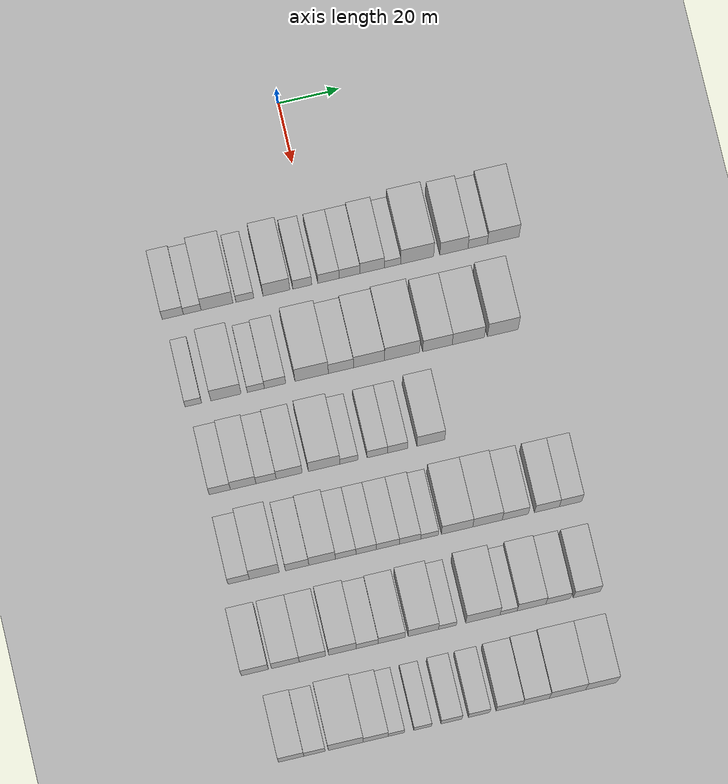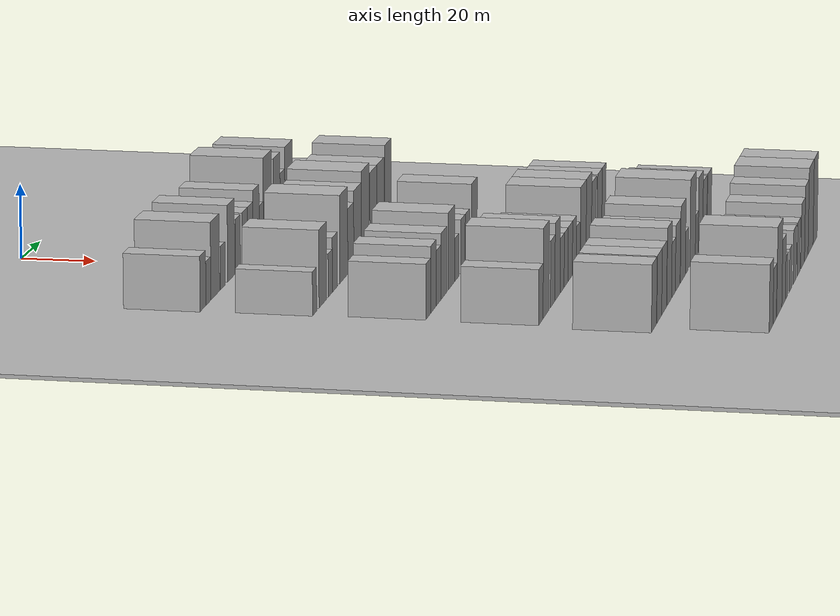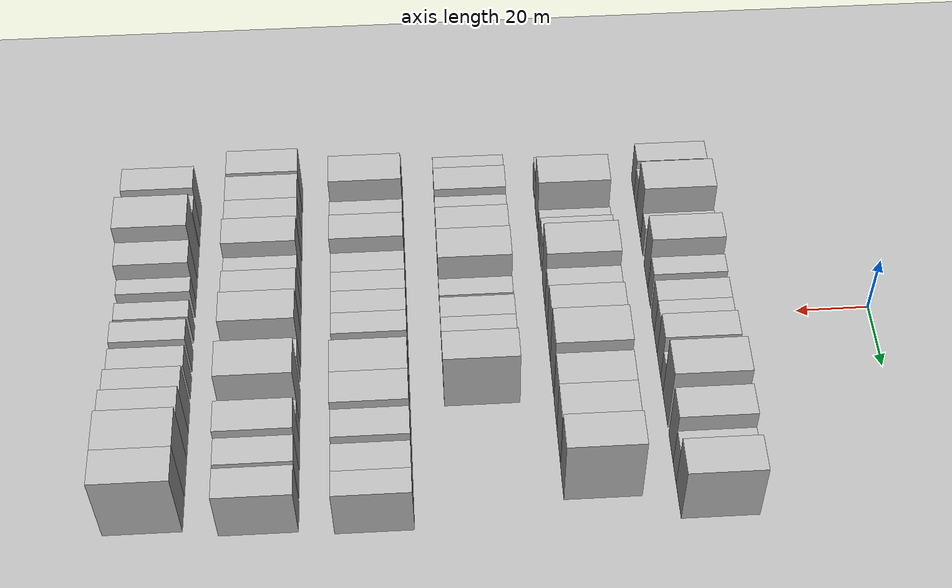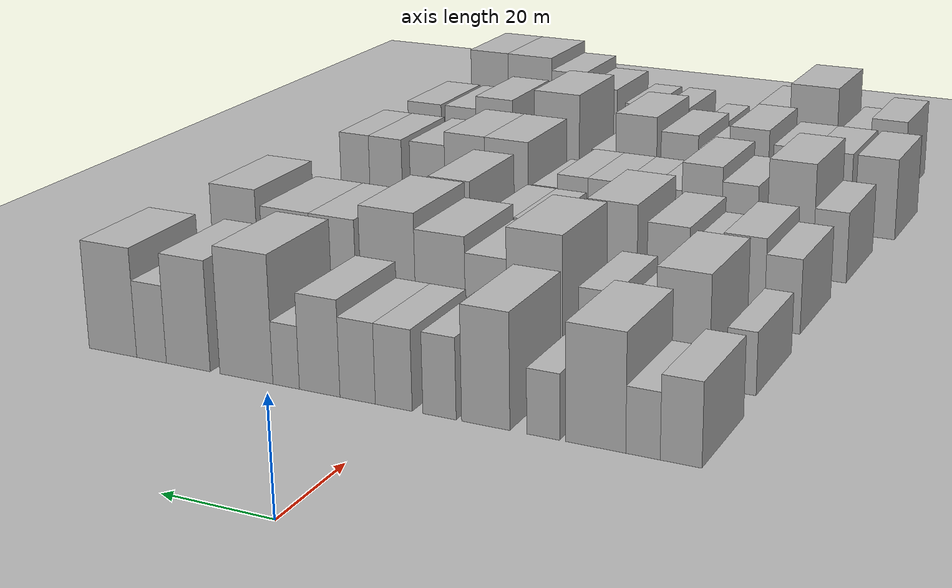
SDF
<sdf version="1.6">
 <world name="default">
  <include><name>ground_plane_1</name><uri>model://HANNAS_ground_plane</uri></include>
  <include>
   <name>ground_plane_2</name>
   <uri>model://HANNAS_ground_plane</uri>
   <pose>100 0 0  0 0 0</pose>
  </include>
  <model name="building_41">
   <static>1</static>
   <pose>50.0000 -48.1010 0 0.000000 0.000000 0.000000</pose>
   <link name="link">
    <pose>0 0 7.50 0 0 0</pose>
    <collision name="collision"><geometry><box><size>20.0000 6.8895 15.0000</size></box></geometry></collision>
    <visual name="visual">
     <cast_shadows>0</cast_shadows>
     <geometry><box><size>20.0000 6.8895 15.0000</size></box></geometry>
     <material>
      <script>
       <uri>model://HANNAS_wall/materials/scripts</uri>
       <uri>model://HANNAS_wall/materials/textures</uri>
       <name>vrc/HANNAS_wall</name>
      </script>
     </material>
    </visual>
   </link>
  </model>
  <model name="building_42">
   <static>1</static>
   <pose>50.0000 -41.7682 0 0.000000 0.000000 0.000000</pose>
   <link name="link">
    <pose>0 0 6.00 0 0 0</pose>
    <collision name="collision"><geometry><box><size>20.0000 5.7761 12.0000</size></box></geometry></collision>
    <visual name="visual">
     <cast_shadows>0</cast_shadows>
     <geometry><box><size>20.0000 5.7761 12.0000</size></box></geometry>
     <material>
      <script>
       <uri>model://HANNAS_wall/materials/scripts</uri>
       <uri>model://HANNAS_wall/materials/textures</uri>
       <name>vrc/HANNAS_wall</name>
      </script>
     </material>
    </visual>
   </link>
  </model>
  <model name="building_43">
   <static>1</static>
   <pose>50.0000 -33.7188 0 0.000000 0.000000 0.000000</pose>
   <link name="link">
    <pose>0 0 10.50 0 0 0</pose>
    <collision name="collision"><geometry><box><size>20.0000 10.3228 21.0000</size></box></geometry></collision>
    <visual name="visual">
     <cast_shadows>0</cast_shadows>
     <geometry><box><size>20.0000 10.3228 21.0000</size></box></geometry>
     <material>
      <script>
       <uri>model://HANNAS_wall/materials/scripts</uri>
       <uri>model://HANNAS_wall/materials/textures</uri>
       <name>vrc/HANNAS_wall</name>
      </script>
     </material>
    </visual>
   </link>
  </model>
  <model name="building_44">
   <static>1</static>
   <pose>50.0000 -24.6572 0 0.000000 0.000000 0.000000</pose>
   <link name="link">
    <pose>0 0 6.00 0 0 0</pose>
    <collision name="collision"><geometry><box><size>20.0000 5.8003 12.0000</size></box></geometry></collision>
    <visual name="visual">
     <cast_shadows>0</cast_shadows>
     <geometry><box><size>20.0000 5.8003 12.0000</size></box></geometry>
     <material>
      <script>
       <uri>model://HANNAS_wall/materials/scripts</uri>
       <uri>model://HANNAS_wall/materials/textures</uri>
       <name>vrc/HANNAS_wall</name>
      </script>
     </material>
    </visual>
   </link>
  </model>
  <model name="building_45">
   <static>1</static>
   <pose>50.0000 -14.4019 0 0.000000 0.000000 0.000000</pose>
   <link name="link">
    <pose>0 0 10.50 0 0 0</pose>
    <collision name="collision"><geometry><box><size>20.0000 8.7104 21.0000</size></box></geometry></collision>
    <visual name="visual">
     <cast_shadows>0</cast_shadows>
     <geometry><box><size>20.0000 8.7104 21.0000</size></box></geometry>
     <material>
      <script>
       <uri>model://HANNAS_wall/materials/scripts</uri>
       <uri>model://HANNAS_wall/materials/textures</uri>
       <name>vrc/HANNAS_wall</name>
      </script>
     </material>
    </visual>
   </link>
  </model>
  <model name="building_46">
   <static>1</static>
   <pose>50.0000 -5.9768 0 0.000000 0.000000 0.000000</pose>
   <link name="link">
    <pose>0 0 7.50 0 0 0</pose>
    <collision name="collision"><geometry><box><size>20.0000 6.1398 15.0000</size></box></geometry></collision>
    <visual name="visual">
     <cast_shadows>0</cast_shadows>
     <geometry><box><size>20.0000 6.1398 15.0000</size></box></geometry>
     <material>
      <script>
       <uri>model://HANNAS_wall/materials/scripts</uri>
       <uri>model://HANNAS_wall/materials/textures</uri>
       <name>vrc/HANNAS_wall</name>
      </script>
     </material>
    </visual>
   </link>
  </model>
  <model name="building_47">
   <static>1</static>
   <pose>50.0000 2.5735 0 0.000000 0.000000 0.000000</pose>
   <link name="link">
    <pose>0 0 7.50 0 0 0</pose>
    <collision name="collision"><geometry><box><size>20.0000 6.9609 15.0000</size></box></geometry></collision>
    <visual name="visual">
     <cast_shadows>0</cast_shadows>
     <geometry><box><size>20.0000 6.9609 15.0000</size></box></geometry>
     <material>
      <script>
       <uri>model://HANNAS_wall/materials/scripts</uri>
       <uri>model://HANNAS_wall/materials/textures</uri>
       <name>vrc/HANNAS_wall</name>
      </script>
     </material>
    </visual>
   </link>
  </model>
  <model name="building_48">
   <static>1</static>
   <pose>50.0000 9.4496 0 0.000000 0.000000 0.000000</pose>
   <link name="link">
    <pose>0 0 7.50 0 0 0</pose>
    <collision name="collision"><geometry><box><size>20.0000 6.7913 15.0000</size></box></geometry></collision>
    <visual name="visual">
     <cast_shadows>0</cast_shadows>
     <geometry><box><size>20.0000 6.7913 15.0000</size></box></geometry>
     <material>
      <script>
       <uri>model://HANNAS_wall/materials/scripts</uri>
       <uri>model://HANNAS_wall/materials/textures</uri>
       <name>vrc/HANNAS_wall</name>
      </script>
     </material>
    </visual>
   </link>
  </model>
  <model name="building_49">
   <static>1</static>
   <pose>50.0000 16.8193 0 0.000000 0.000000 0.000000</pose>
   <link name="link">
    <pose>0 0 9.00 0 0 0</pose>
    <collision name="collision"><geometry><box><size>20.0000 7.9480 18.0000</size></box></geometry></collision>
    <visual name="visual">
     <cast_shadows>0</cast_shadows>
     <geometry><box><size>20.0000 7.9480 18.0000</size></box></geometry>
     <material>
      <script>
       <uri>model://HANNAS_wall/materials/scripts</uri>
       <uri>model://HANNAS_wall/materials/textures</uri>
       <name>vrc/HANNAS_wall</name>
      </script>
     </material>
    </visual>
   </link>
  </model>
  <model name="building_50">
   <static>1</static>
   <pose>50.0000 23.4290 0 0.000000 0.000000 0.000000</pose>
   <link name="link">
    <pose>0 0 6.00 0 0 0</pose>
    <collision name="collision"><geometry><box><size>20.0000 5.2714 12.0000</size></box></geometry></collision>
    <visual name="visual">
     <cast_shadows>0</cast_shadows>
     <geometry><box><size>20.0000 5.2714 12.0000</size></box></geometry>
     <material>
      <script>
       <uri>model://HANNAS_wall/materials/scripts</uri>
       <uri>model://HANNAS_wall/materials/textures</uri>
       <name>vrc/HANNAS_wall</name>
      </script>
     </material>
    </visual>
   </link>
  </model>
  <model name="building_51">
   <static>1</static>
   <pose>50.0000 31.4627 0 0.000000 0.000000 0.000000</pose>
   <link name="link">
    <pose>0 0 12.00 0 0 0</pose>
    <collision name="collision"><geometry><box><size>20.0000 10.7959 24.0000</size></box></geometry></collision>
    <visual name="visual">
     <cast_shadows>0</cast_shadows>
     <geometry><box><size>20.0000 10.7959 24.0000</size></box></geometry>
     <material>
      <script>
       <uri>model://HANNAS_wall/materials/scripts</uri>
       <uri>model://HANNAS_wall/materials/textures</uri>
       <name>vrc/HANNAS_wall</name>
      </script>
     </material>
    </visual>
   </link>
  </model>
  <model name="building_52">
   <static>1</static>
   <pose>50.0000 43.4519 0 0.000000 0.000000 0.000000</pose>
   <link name="link">
    <pose>0 0 10.50 0 0 0</pose>
    <collision name="collision"><geometry><box><size>20.0000 9.1825 21.0000</size></box></geometry></collision>
    <visual name="visual">
     <cast_shadows>0</cast_shadows>
     <geometry><box><size>20.0000 9.1825 21.0000</size></box></geometry>
     <material>
      <script>
       <uri>model://HANNAS_wall/materials/scripts</uri>
       <uri>model://HANNAS_wall/materials/textures</uri>
       <name>vrc/HANNAS_wall</name>
      </script>
     </material>
    </visual>
   </link>
  </model>
  <model name="building_53">
   <static>1</static>
   <pose>50.0000 51.2084 0 0.000000 0.000000 0.000000</pose>
   <link name="link">
    <pose>0 0 7.50 0 0 0</pose>
    <collision name="collision"><geometry><box><size>20.0000 6.3305 15.0000</size></box></geometry></collision>
    <visual name="visual">
     <cast_shadows>0</cast_shadows>
     <geometry><box><size>20.0000 6.3305 15.0000</size></box></geometry>
     <material>
      <script>
       <uri>model://HANNAS_wall/materials/scripts</uri>
       <uri>model://HANNAS_wall/materials/textures</uri>
       <name>vrc/HANNAS_wall</name>
      </script>
     </material>
    </visual>
   </link>
  </model>
  <model name="building_54">
   <static>1</static>
   <pose>50.0000 59.5419 0 0.000000 0.000000 0.000000</pose>
   <link name="link">
    <pose>0 0 10.50 0 0 0</pose>
    <collision name="collision"><geometry><box><size>20.0000 10.3367 21.0000</size></box></geometry></collision>
    <visual name="visual">
     <cast_shadows>0</cast_shadows>
     <geometry><box><size>20.0000 10.3367 21.0000</size></box></geometry>
     <material>
      <script>
       <uri>model://HANNAS_wall/materials/scripts</uri>
       <uri>model://HANNAS_wall/materials/textures</uri>
       <name>vrc/HANNAS_wall</name>
      </script>
     </material>
    </visual>
   </link>
  </model>
  <model name="building_148">
   <static>1</static>
   <pose>79.0000 -48.0501 0 0.000000 0.000000 0.000000</pose>
   <link name="link">
    <pose>0 0 6.00 0 0 0</pose>
    <collision name="collision"><geometry><box><size>20.0000 5.3255 12.0000</size></box></geometry></collision>
    <visual name="visual">
     <cast_shadows>0</cast_shadows>
     <geometry><box><size>20.0000 5.3255 12.0000</size></box></geometry>
     <material>
      <script>
       <uri>model://HANNAS_wall/materials/scripts</uri>
       <uri>model://HANNAS_wall/materials/textures</uri>
       <name>vrc/HANNAS_wall</name>
      </script>
     </material>
    </visual>
   </link>
  </model>
  <model name="building_149">
   <static>1</static>
   <pose>79.0000 -37.4778 0 0.000000 0.000000 0.000000</pose>
   <link name="link">
    <pose>0 0 10.50 0 0 0</pose>
    <collision name="collision"><geometry><box><size>20.0000 9.8191 21.0000</size></box></geometry></collision>
    <visual name="visual">
     <cast_shadows>0</cast_shadows>
     <geometry><box><size>20.0000 9.8191 21.0000</size></box></geometry>
     <material>
      <script>
       <uri>model://HANNAS_wall/materials/scripts</uri>
       <uri>model://HANNAS_wall/materials/textures</uri>
       <name>vrc/HANNAS_wall</name>
      </script>
     </material>
    </visual>
   </link>
  </model>
  <model name="building_150">
   <static>1</static>
   <pose>79.0000 -27.7996 0 0.000000 0.000000 0.000000</pose>
   <link name="link">
    <pose>0 0 6.00 0 0 0</pose>
    <collision name="collision"><geometry><box><size>20.0000 5.5372 12.0000</size></box></geometry></collision>
    <visual name="visual">
     <cast_shadows>0</cast_shadows>
     <geometry><box><size>20.0000 5.5372 12.0000</size></box></geometry>
     <material>
      <script>
       <uri>model://HANNAS_wall/materials/scripts</uri>
       <uri>model://HANNAS_wall/materials/textures</uri>
       <name>vrc/HANNAS_wall</name>
      </script>
     </material>
    </visual>
   </link>
  </model>
  <model name="building_151">
   <static>1</static>
   <pose>79.0000 -21.5637 0 0.000000 0.000000 0.000000</pose>
   <link name="link">
    <pose>0 0 7.50 0 0 0</pose>
    <collision name="collision"><geometry><box><size>20.0000 6.9346 15.0000</size></box></geometry></collision>
    <visual name="visual">
     <cast_shadows>0</cast_shadows>
     <geometry><box><size>20.0000 6.9346 15.0000</size></box></geometry>
     <material>
      <script>
       <uri>model://HANNAS_wall/materials/scripts</uri>
       <uri>model://HANNAS_wall/materials/textures</uri>
       <name>vrc/HANNAS_wall</name>
      </script>
     </material>
    </visual>
   </link>
  </model>
  <model name="building_152">
   <static>1</static>
   <pose>79.0000 -9.6789 0 0.000000 0.000000 0.000000</pose>
   <link name="link">
    <pose>0 0 12.00 0 0 0</pose>
    <collision name="collision"><geometry><box><size>20.0000 10.8350 24.0000</size></box></geometry></collision>
    <visual name="visual">
     <cast_shadows>0</cast_shadows>
     <geometry><box><size>20.0000 10.8350 24.0000</size></box></geometry>
     <material>
      <script>
       <uri>model://HANNAS_wall/materials/scripts</uri>
       <uri>model://HANNAS_wall/materials/textures</uri>
       <name>vrc/HANNAS_wall</name>
      </script>
     </material>
    </visual>
   </link>
  </model>
  <model name="building_153">
   <static>1</static>
   <pose>79.0000 -0.1627 0 0.000000 0.000000 0.000000</pose>
   <link name="link">
    <pose>0 0 9.00 0 0 0</pose>
    <collision name="collision"><geometry><box><size>20.0000 8.1976 18.0000</size></box></geometry></collision>
    <visual name="visual">
     <cast_shadows>0</cast_shadows>
     <geometry><box><size>20.0000 8.1976 18.0000</size></box></geometry>
     <material>
      <script>
       <uri>model://HANNAS_wall/materials/scripts</uri>
       <uri>model://HANNAS_wall/materials/textures</uri>
       <name>vrc/HANNAS_wall</name>
      </script>
     </material>
    </visual>
   </link>
  </model>
  <model name="building_154">
   <static>1</static>
   <pose>79.0000 8.9868 0 0.000000 0.000000 0.000000</pose>
   <link name="link">
    <pose>0 0 10.50 0 0 0</pose>
    <collision name="collision"><geometry><box><size>20.0000 10.1013 21.0000</size></box></geometry></collision>
    <visual name="visual">
     <cast_shadows>0</cast_shadows>
     <geometry><box><size>20.0000 10.1013 21.0000</size></box></geometry>
     <material>
      <script>
       <uri>model://HANNAS_wall/materials/scripts</uri>
       <uri>model://HANNAS_wall/materials/textures</uri>
       <name>vrc/HANNAS_wall</name>
      </script>
     </material>
    </visual>
   </link>
  </model>
  <model name="building_155">
   <static>1</static>
   <pose>79.0000 19.7167 0 0.000000 0.000000 0.000000</pose>
   <link name="link">
    <pose>0 0 12.00 0 0 0</pose>
    <collision name="collision"><geometry><box><size>20.0000 11.3586 24.0000</size></box></geometry></collision>
    <visual name="visual">
     <cast_shadows>0</cast_shadows>
     <geometry><box><size>20.0000 11.3586 24.0000</size></box></geometry>
     <material>
      <script>
       <uri>model://HANNAS_wall/materials/scripts</uri>
       <uri>model://HANNAS_wall/materials/textures</uri>
       <name>vrc/HANNAS_wall</name>
      </script>
     </material>
    </visual>
   </link>
  </model>
  <model name="building_156">
   <static>1</static>
   <pose>79.0000 31.1925 0 0.000000 0.000000 0.000000</pose>
   <link name="link">
    <pose>0 0 10.50 0 0 0</pose>
    <collision name="collision"><geometry><box><size>20.0000 9.5930 21.0000</size></box></geometry></collision>
    <visual name="visual">
     <cast_shadows>0</cast_shadows>
     <geometry><box><size>20.0000 9.5930 21.0000</size></box></geometry>
     <material>
      <script>
       <uri>model://HANNAS_wall/materials/scripts</uri>
       <uri>model://HANNAS_wall/materials/textures</uri>
       <name>vrc/HANNAS_wall</name>
      </script>
     </material>
    </visual>
   </link>
  </model>
  <model name="building_157">
   <static>1</static>
   <pose>79.0000 41.2150 0 0.000000 0.000000 0.000000</pose>
   <link name="link">
    <pose>0 0 10.50 0 0 0</pose>
    <collision name="collision"><geometry><box><size>20.0000 10.4520 21.0000</size></box></geometry></collision>
    <visual name="visual">
     <cast_shadows>0</cast_shadows>
     <geometry><box><size>20.0000 10.4520 21.0000</size></box></geometry>
     <material>
      <script>
       <uri>model://HANNAS_wall/materials/scripts</uri>
       <uri>model://HANNAS_wall/materials/textures</uri>
       <name>vrc/HANNAS_wall</name>
      </script>
     </material>
    </visual>
   </link>
  </model>
  <model name="building_158">
   <static>1</static>
   <pose>79.0000 52.4488 0 0.000000 0.000000 0.000000</pose>
   <link name="link">
    <pose>0 0 12.00 0 0 0</pose>
    <collision name="collision"><geometry><box><size>20.0000 10.0155 24.0000</size></box></geometry></collision>
    <visual name="visual">
     <cast_shadows>0</cast_shadows>
     <geometry><box><size>20.0000 10.0155 24.0000</size></box></geometry>
     <material>
      <script>
       <uri>model://HANNAS_wall/materials/scripts</uri>
       <uri>model://HANNAS_wall/materials/textures</uri>
       <name>vrc/HANNAS_wall</name>
      </script>
     </material>
    </visual>
   </link>
  </model>
  <model name="building_263">
   <static>1</static>
   <pose>108.0000 -46.1292 0 0.000000 0.000000 0.000000</pose>
   <link name="link">
    <pose>0 0 7.50 0 0 0</pose>
    <collision name="collision"><geometry><box><size>20.0000 6.8797 15.0000</size></box></geometry></collision>
    <visual name="visual">
     <cast_shadows>0</cast_shadows>
     <geometry><box><size>20.0000 6.8797 15.0000</size></box></geometry>
     <material>
      <script>
       <uri>model://HANNAS_wall/materials/scripts</uri>
       <uri>model://HANNAS_wall/materials/textures</uri>
       <name>vrc/HANNAS_wall</name>
      </script>
     </material>
    </visual>
   </link>
  </model>
  <model name="building_264">
   <static>1</static>
   <pose>108.0000 -38.5806 0 0.000000 0.000000 0.000000</pose>
   <link name="link">
    <pose>0 0 9.00 0 0 0</pose>
    <collision name="collision"><geometry><box><size>20.0000 8.2174 18.0000</size></box></geometry></collision>
    <visual name="visual">
     <cast_shadows>0</cast_shadows>
     <geometry><box><size>20.0000 8.2174 18.0000</size></box></geometry>
     <material>
      <script>
       <uri>model://HANNAS_wall/materials/scripts</uri>
       <uri>model://HANNAS_wall/materials/textures</uri>
       <name>vrc/HANNAS_wall</name>
      </script>
     </material>
    </visual>
   </link>
  </model>
  <model name="building_265">
   <static>1</static>
   <pose>108.0000 -31.2060 0 0.000000 0.000000 0.000000</pose>
   <link name="link">
    <pose>0 0 7.50 0 0 0</pose>
    <collision name="collision"><geometry><box><size>20.0000 6.5317 15.0000</size></box></geometry></collision>
    <visual name="visual">
     <cast_shadows>0</cast_shadows>
     <geometry><box><size>20.0000 6.5317 15.0000</size></box></geometry>
     <material>
      <script>
       <uri>model://HANNAS_wall/materials/scripts</uri>
       <uri>model://HANNAS_wall/materials/textures</uri>
       <name>vrc/HANNAS_wall</name>
      </script>
     </material>
    </visual>
   </link>
  </model>
  <model name="building_266">
   <static>1</static>
   <pose>108.0000 -23.7200 0 0.000000 0.000000 0.000000</pose>
   <link name="link">
    <pose>0 0 9.00 0 0 0</pose>
    <collision name="collision"><geometry><box><size>20.0000 8.4402 18.0000</size></box></geometry></collision>
    <visual name="visual">
     <cast_shadows>0</cast_shadows>
     <geometry><box><size>20.0000 8.4402 18.0000</size></box></geometry>
     <material>
      <script>
       <uri>model://HANNAS_wall/materials/scripts</uri>
       <uri>model://HANNAS_wall/materials/textures</uri>
       <name>vrc/HANNAS_wall</name>
      </script>
     </material>
    </visual>
   </link>
  </model>
  <model name="building_267">
   <static>1</static>
   <pose>108.0000 -12.3893 0 0.000000 0.000000 0.000000</pose>
   <link name="link">
    <pose>0 0 10.50 0 0 0</pose>
    <collision name="collision"><geometry><box><size>20.0000 10.2211 21.0000</size></box></geometry></collision>
    <visual name="visual">
     <cast_shadows>0</cast_shadows>
     <geometry><box><size>20.0000 10.2211 21.0000</size></box></geometry>
     <material>
      <script>
       <uri>model://HANNAS_wall/materials/scripts</uri>
       <uri>model://HANNAS_wall/materials/textures</uri>
       <name>vrc/HANNAS_wall</name>
      </script>
     </material>
    </visual>
   </link>
  </model>
  <model name="building_268">
   <static>1</static>
   <pose>108.0000 -4.3798 0 0.000000 0.000000 0.000000</pose>
   <link name="link">
    <pose>0 0 6.00 0 0 0</pose>
    <collision name="collision"><geometry><box><size>20.0000 5.7981 12.0000</size></box></geometry></collision>
    <visual name="visual">
     <cast_shadows>0</cast_shadows>
     <geometry><box><size>20.0000 5.7981 12.0000</size></box></geometry>
     <material>
      <script>
       <uri>model://HANNAS_wall/materials/scripts</uri>
       <uri>model://HANNAS_wall/materials/textures</uri>
       <name>vrc/HANNAS_wall</name>
      </script>
     </material>
    </visual>
   </link>
  </model>
  <model name="building_269">
   <static>1</static>
   <pose>108.0000 4.8494 0 0.000000 0.000000 0.000000</pose>
   <link name="link">
    <pose>0 0 7.50 0 0 0</pose>
    <collision name="collision"><geometry><box><size>20.0000 6.6603 15.0000</size></box></geometry></collision>
    <visual name="visual">
     <cast_shadows>0</cast_shadows>
     <geometry><box><size>20.0000 6.6603 15.0000</size></box></geometry>
     <material>
      <script>
       <uri>model://HANNAS_wall/materials/scripts</uri>
       <uri>model://HANNAS_wall/materials/textures</uri>
       <name>vrc/HANNAS_wall</name>
      </script>
     </material>
    </visual>
   </link>
  </model>
  <model name="building_270">
   <static>1</static>
   <pose>108.0000 11.4044 0 0.000000 0.000000 0.000000</pose>
   <link name="link">
    <pose>0 0 7.50 0 0 0</pose>
    <collision name="collision"><geometry><box><size>20.0000 6.4497 15.0000</size></box></geometry></collision>
    <visual name="visual">
     <cast_shadows>0</cast_shadows>
     <geometry><box><size>20.0000 6.4497 15.0000</size></box></geometry>
     <material>
      <script>
       <uri>model://HANNAS_wall/materials/scripts</uri>
       <uri>model://HANNAS_wall/materials/textures</uri>
       <name>vrc/HANNAS_wall</name>
      </script>
     </material>
    </visual>
   </link>
  </model>
  <model name="building_271">
   <static>1</static>
   <pose>108.0000 22.1513 0 0.000000 0.000000 0.000000</pose>
   <link name="link">
    <pose>0 0 10.50 0 0 0</pose>
    <collision name="collision"><geometry><box><size>20.0000 9.0440 21.0000</size></box></geometry></collision>
    <visual name="visual">
     <cast_shadows>0</cast_shadows>
     <geometry><box><size>20.0000 9.0440 21.0000</size></box></geometry>
     <material>
      <script>
       <uri>model://HANNAS_wall/materials/scripts</uri>
       <uri>model://HANNAS_wall/materials/textures</uri>
       <name>vrc/HANNAS_wall</name>
      </script>
     </material>
    </visual>
   </link>
  </model>
  <model name="building_370">
   <static>1</static>
   <pose>137.0000 -46.6988 0 0.000000 0.000000 0.000000</pose>
   <link name="link">
    <pose>0 0 7.50 0 0 0</pose>
    <collision name="collision"><geometry><box><size>20.0000 6.8825 15.0000</size></box></geometry></collision>
    <visual name="visual">
     <cast_shadows>0</cast_shadows>
     <geometry><box><size>20.0000 6.8825 15.0000</size></box></geometry>
     <material>
      <script>
       <uri>model://HANNAS_wall/materials/scripts</uri>
       <uri>model://HANNAS_wall/materials/textures</uri>
       <name>vrc/HANNAS_wall</name>
      </script>
     </material>
    </visual>
   </link>
  </model>
  <model name="building_371">
   <static>1</static>
   <pose>137.0000 -38.4517 0 0.000000 0.000000 0.000000</pose>
   <link name="link">
    <pose>0 0 12.00 0 0 0</pose>
    <collision name="collision"><geometry><box><size>20.0000 9.6118 24.0000</size></box></geometry></collision>
    <visual name="visual">
     <cast_shadows>0</cast_shadows>
     <geometry><box><size>20.0000 9.6118 24.0000</size></box></geometry>
     <material>
      <script>
       <uri>model://HANNAS_wall/materials/scripts</uri>
       <uri>model://HANNAS_wall/materials/textures</uri>
       <name>vrc/HANNAS_wall</name>
      </script>
     </material>
    </visual>
   </link>
  </model>
  <model name="building_372">
   <static>1</static>
   <pose>137.0000 -27.8835 0 0.000000 0.000000 0.000000</pose>
   <link name="link">
    <pose>0 0 9.00 0 0 0</pose>
    <collision name="collision"><geometry><box><size>20.0000 7.5246 18.0000</size></box></geometry></collision>
    <visual name="visual">
     <cast_shadows>0</cast_shadows>
     <geometry><box><size>20.0000 7.5246 18.0000</size></box></geometry>
     <material>
      <script>
       <uri>model://HANNAS_wall/materials/scripts</uri>
       <uri>model://HANNAS_wall/materials/textures</uri>
       <name>vrc/HANNAS_wall</name>
      </script>
     </material>
    </visual>
   </link>
  </model>
  <model name="building_373">
   <static>1</static>
   <pose>137.0000 -19.8344 0 0.000000 0.000000 0.000000</pose>
   <link name="link">
    <pose>0 0 10.50 0 0 0</pose>
    <collision name="collision"><geometry><box><size>20.0000 8.5734 21.0000</size></box></geometry></collision>
    <visual name="visual">
     <cast_shadows>0</cast_shadows>
     <geometry><box><size>20.0000 8.5734 21.0000</size></box></geometry>
     <material>
      <script>
       <uri>model://HANNAS_wall/materials/scripts</uri>
       <uri>model://HANNAS_wall/materials/textures</uri>
       <name>vrc/HANNAS_wall</name>
      </script>
     </material>
    </visual>
   </link>
  </model>
  <model name="building_374">
   <static>1</static>
   <pose>137.0000 -12.2249 0 0.000000 0.000000 0.000000</pose>
   <link name="link">
    <pose>0 0 7.50 0 0 0</pose>
    <collision name="collision"><geometry><box><size>20.0000 6.6456 15.0000</size></box></geometry></collision>
    <visual name="visual">
     <cast_shadows>0</cast_shadows>
     <geometry><box><size>20.0000 6.6456 15.0000</size></box></geometry>
     <material>
      <script>
       <uri>model://HANNAS_wall/materials/scripts</uri>
       <uri>model://HANNAS_wall/materials/textures</uri>
       <name>vrc/HANNAS_wall</name>
      </script>
     </material>
    </visual>
   </link>
  </model>
  <model name="building_375">
   <static>1</static>
   <pose>137.0000 -5.5874 0 0.000000 0.000000 0.000000</pose>
   <link name="link">
    <pose>0 0 7.50 0 0 0</pose>
    <collision name="collision"><geometry><box><size>20.0000 6.6294 15.0000</size></box></geometry></collision>
    <visual name="visual">
     <cast_shadows>0</cast_shadows>
     <geometry><box><size>20.0000 6.6294 15.0000</size></box></geometry>
     <material>
      <script>
       <uri>model://HANNAS_wall/materials/scripts</uri>
       <uri>model://HANNAS_wall/materials/textures</uri>
       <name>vrc/HANNAS_wall</name>
      </script>
     </material>
    </visual>
   </link>
  </model>
  <model name="building_376">
   <static>1</static>
   <pose>137.0000 1.4182 0 0.000000 0.000000 0.000000</pose>
   <link name="link">
    <pose>0 0 7.50 0 0 0</pose>
    <collision name="collision"><geometry><box><size>20.0000 7.3817 15.0000</size></box></geometry></collision>
    <visual name="visual">
     <cast_shadows>0</cast_shadows>
     <geometry><box><size>20.0000 7.3817 15.0000</size></box></geometry>
     <material>
      <script>
       <uri>model://HANNAS_wall/materials/scripts</uri>
       <uri>model://HANNAS_wall/materials/textures</uri>
       <name>vrc/HANNAS_wall</name>
      </script>
     </material>
    </visual>
   </link>
  </model>
  <model name="building_377">
   <static>1</static>
   <pose>137.0000 8.5700 0 0.000000 0.000000 0.000000</pose>
   <link name="link">
    <pose>0 0 7.50 0 0 0</pose>
    <collision name="collision"><geometry><box><size>20.0000 6.9221 15.0000</size></box></geometry></collision>
    <visual name="visual">
     <cast_shadows>0</cast_shadows>
     <geometry><box><size>20.0000 6.9221 15.0000</size></box></geometry>
     <material>
      <script>
       <uri>model://HANNAS_wall/materials/scripts</uri>
       <uri>model://HANNAS_wall/materials/textures</uri>
       <name>vrc/HANNAS_wall</name>
      </script>
     </material>
    </visual>
   </link>
  </model>
  <model name="building_378">
   <static>1</static>
   <pose>137.0000 14.8588 0 0.000000 0.000000 0.000000</pose>
   <link name="link">
    <pose>0 0 6.00 0 0 0</pose>
    <collision name="collision"><geometry><box><size>20.0000 5.6554 12.0000</size></box></geometry></collision>
    <visual name="visual">
     <cast_shadows>0</cast_shadows>
     <geometry><box><size>20.0000 5.6554 12.0000</size></box></geometry>
     <material>
      <script>
       <uri>model://HANNAS_wall/materials/scripts</uri>
       <uri>model://HANNAS_wall/materials/textures</uri>
       <name>vrc/HANNAS_wall</name>
      </script>
     </material>
    </visual>
   </link>
  </model>
  <model name="building_379">
   <static>1</static>
   <pose>137.0000 23.7562 0 0.000000 0.000000 0.000000</pose>
   <link name="link">
    <pose>0 0 10.50 0 0 0</pose>
    <collision name="collision"><geometry><box><size>20.0000 10.1394 21.0000</size></box></geometry></collision>
    <visual name="visual">
     <cast_shadows>0</cast_shadows>
     <geometry><box><size>20.0000 10.1394 21.0000</size></box></geometry>
     <material>
      <script>
       <uri>model://HANNAS_wall/materials/scripts</uri>
       <uri>model://HANNAS_wall/materials/textures</uri>
       <name>vrc/HANNAS_wall</name>
      </script>
     </material>
    </visual>
   </link>
  </model>
  <model name="building_380">
   <static>1</static>
   <pose>137.0000 33.5823 0 0.000000 0.000000 0.000000</pose>
   <link name="link">
    <pose>0 0 10.50 0 0 0</pose>
    <collision name="collision"><geometry><box><size>20.0000 9.5128 21.0000</size></box></geometry></collision>
    <visual name="visual">
     <cast_shadows>0</cast_shadows>
     <geometry><box><size>20.0000 9.5128 21.0000</size></box></geometry>
     <material>
      <script>
       <uri>model://HANNAS_wall/materials/scripts</uri>
       <uri>model://HANNAS_wall/materials/textures</uri>
       <name>vrc/HANNAS_wall</name>
      </script>
     </material>
    </visual>
   </link>
  </model>
  <model name="building_381">
   <static>1</static>
   <pose>137.0000 42.5630 0 0.000000 0.000000 0.000000</pose>
   <link name="link">
    <pose>0 0 9.00 0 0 0</pose>
    <collision name="collision"><geometry><box><size>20.0000 8.4486 18.0000</size></box></geometry></collision>
    <visual name="visual">
     <cast_shadows>0</cast_shadows>
     <geometry><box><size>20.0000 8.4486 18.0000</size></box></geometry>
     <material>
      <script>
       <uri>model://HANNAS_wall/materials/scripts</uri>
       <uri>model://HANNAS_wall/materials/textures</uri>
       <name>vrc/HANNAS_wall</name>
      </script>
     </material>
    </visual>
   </link>
  </model>
  <model name="building_382">
   <static>1</static>
   <pose>137.0000 52.8174 0 0.000000 0.000000 0.000000</pose>
   <link name="link">
    <pose>0 0 9.00 0 0 0</pose>
    <collision name="collision"><geometry><box><size>20.0000 8.0603 18.0000</size></box></geometry></collision>
    <visual name="visual">
     <cast_shadows>0</cast_shadows>
     <geometry><box><size>20.0000 8.0603 18.0000</size></box></geometry>
     <material>
      <script>
       <uri>model://HANNAS_wall/materials/scripts</uri>
       <uri>model://HANNAS_wall/materials/textures</uri>
       <name>vrc/HANNAS_wall</name>
      </script>
     </material>
    </visual>
   </link>
  </model>
  <model name="building_383">
   <static>1</static>
   <pose>137.0000 60.4751 0 0.000000 0.000000 0.000000</pose>
   <link name="link">
    <pose>0 0 9.00 0 0 0</pose>
    <collision name="collision"><geometry><box><size>20.0000 7.2552 18.0000</size></box></geometry></collision>
    <visual name="visual">
     <cast_shadows>0</cast_shadows>
     <geometry><box><size>20.0000 7.2552 18.0000</size></box></geometry>
     <material>
      <script>
       <uri>model://HANNAS_wall/materials/scripts</uri>
       <uri>model://HANNAS_wall/materials/textures</uri>
       <name>vrc/HANNAS_wall</name>
      </script>
     </material>
    </visual>
   </link>
  </model>
  <model name="building_488">
   <static>1</static>
   <pose>166.0000 -48.1683 0 0.000000 0.000000 0.000000</pose>
   <link name="link">
    <pose>0 0 9.00 0 0 0</pose>
    <collision name="collision"><geometry><box><size>20.0000 8.7127 18.0000</size></box></geometry></collision>
    <visual name="visual">
     <cast_shadows>0</cast_shadows>
     <geometry><box><size>20.0000 8.7127 18.0000</size></box></geometry>
     <material>
      <script>
       <uri>model://HANNAS_wall/materials/scripts</uri>
       <uri>model://HANNAS_wall/materials/textures</uri>
       <name>vrc/HANNAS_wall</name>
      </script>
     </material>
    </visual>
   </link>
  </model>
  <model name="building_489">
   <static>1</static>
   <pose>166.0000 -38.3691 0 0.000000 0.000000 0.000000</pose>
   <link name="link">
    <pose>0 0 9.00 0 0 0</pose>
    <collision name="collision"><geometry><box><size>20.0000 8.8858 18.0000</size></box></geometry></collision>
    <visual name="visual">
     <cast_shadows>0</cast_shadows>
     <geometry><box><size>20.0000 8.8858 18.0000</size></box></geometry>
     <material>
      <script>
       <uri>model://HANNAS_wall/materials/scripts</uri>
       <uri>model://HANNAS_wall/materials/textures</uri>
       <name>vrc/HANNAS_wall</name>
      </script>
     </material>
    </visual>
   </link>
  </model>
  <model name="building_490">
   <static>1</static>
   <pose>166.0000 -29.6910 0 0.000000 0.000000 0.000000</pose>
   <link name="link">
    <pose>0 0 9.00 0 0 0</pose>
    <collision name="collision"><geometry><box><size>20.0000 8.4704 18.0000</size></box></geometry></collision>
    <visual name="visual">
     <cast_shadows>0</cast_shadows>
     <geometry><box><size>20.0000 8.4704 18.0000</size></box></geometry>
     <material>
      <script>
       <uri>model://HANNAS_wall/materials/scripts</uri>
       <uri>model://HANNAS_wall/materials/textures</uri>
       <name>vrc/HANNAS_wall</name>
      </script>
     </material>
    </visual>
   </link>
  </model>
  <model name="building_491">
   <static>1</static>
   <pose>166.0000 -20.0320 0 0.000000 0.000000 0.000000</pose>
   <link name="link">
    <pose>0 0 10.50 0 0 0</pose>
    <collision name="collision"><geometry><box><size>20.0000 8.8476 21.0000</size></box></geometry></collision>
    <visual name="visual">
     <cast_shadows>0</cast_shadows>
     <geometry><box><size>20.0000 8.8476 21.0000</size></box></geometry>
     <material>
      <script>
       <uri>model://HANNAS_wall/materials/scripts</uri>
       <uri>model://HANNAS_wall/materials/textures</uri>
       <name>vrc/HANNAS_wall</name>
      </script>
     </material>
    </visual>
   </link>
  </model>
  <model name="building_492">
   <static>1</static>
   <pose>166.0000 -12.0559 0 0.000000 0.000000 0.000000</pose>
   <link name="link">
    <pose>0 0 7.50 0 0 0</pose>
    <collision name="collision"><geometry><box><size>20.0000 7.1045 15.0000</size></box></geometry></collision>
    <visual name="visual">
     <cast_shadows>0</cast_shadows>
     <geometry><box><size>20.0000 7.1045 15.0000</size></box></geometry>
     <material>
      <script>
       <uri>model://HANNAS_wall/materials/scripts</uri>
       <uri>model://HANNAS_wall/materials/textures</uri>
       <name>vrc/HANNAS_wall</name>
      </script>
     </material>
    </visual>
   </link>
  </model>
  <model name="building_493">
   <static>1</static>
   <pose>166.0000 -4.1863 0 0.000000 0.000000 0.000000</pose>
   <link name="link">
    <pose>0 0 9.00 0 0 0</pose>
    <collision name="collision"><geometry><box><size>20.0000 8.6347 18.0000</size></box></geometry></collision>
    <visual name="visual">
     <cast_shadows>0</cast_shadows>
     <geometry><box><size>20.0000 8.6347 18.0000</size></box></geometry>
     <material>
      <script>
       <uri>model://HANNAS_wall/materials/scripts</uri>
       <uri>model://HANNAS_wall/materials/textures</uri>
       <name>vrc/HANNAS_wall</name>
      </script>
     </material>
    </visual>
   </link>
  </model>
  <model name="building_494">
   <static>1</static>
   <pose>166.0000 5.9939 0 0.000000 0.000000 0.000000</pose>
   <link name="link">
    <pose>0 0 10.50 0 0 0</pose>
    <collision name="collision"><geometry><box><size>20.0000 9.7255 21.0000</size></box></geometry></collision>
    <visual name="visual">
     <cast_shadows>0</cast_shadows>
     <geometry><box><size>20.0000 9.7255 21.0000</size></box></geometry>
     <material>
      <script>
       <uri>model://HANNAS_wall/materials/scripts</uri>
       <uri>model://HANNAS_wall/materials/textures</uri>
       <name>vrc/HANNAS_wall</name>
      </script>
     </material>
    </visual>
   </link>
  </model>
  <model name="building_495">
   <static>1</static>
   <pose>166.0000 13.7370 0 0.000000 0.000000 0.000000</pose>
   <link name="link">
    <pose>0 0 6.00 0 0 0</pose>
    <collision name="collision"><geometry><box><size>20.0000 5.7607 12.0000</size></box></geometry></collision>
    <visual name="visual">
     <cast_shadows>0</cast_shadows>
     <geometry><box><size>20.0000 5.7607 12.0000</size></box></geometry>
     <material>
      <script>
       <uri>model://HANNAS_wall/materials/scripts</uri>
       <uri>model://HANNAS_wall/materials/textures</uri>
       <name>vrc/HANNAS_wall</name>
      </script>
     </material>
    </visual>
   </link>
  </model>
  <model name="building_496">
   <static>1</static>
   <pose>166.0000 25.1363 0 0.000000 0.000000 0.000000</pose>
   <link name="link">
    <pose>0 0 12.00 0 0 0</pose>
    <collision name="collision"><geometry><box><size>20.0000 11.0379 24.0000</size></box></geometry></collision>
    <visual name="visual">
     <cast_shadows>0</cast_shadows>
     <geometry><box><size>20.0000 11.0379 24.0000</size></box></geometry>
     <material>
      <script>
       <uri>model://HANNAS_wall/materials/scripts</uri>
       <uri>model://HANNAS_wall/materials/textures</uri>
       <name>vrc/HANNAS_wall</name>
      </script>
     </material>
    </visual>
   </link>
  </model>
  <model name="building_497">
   <static>1</static>
   <pose>166.0000 33.4174 0 0.000000 0.000000 0.000000</pose>
   <link name="link">
    <pose>0 0 6.00 0 0 0</pose>
    <collision name="collision"><geometry><box><size>20.0000 5.5243 12.0000</size></box></geometry></collision>
    <visual name="visual">
     <cast_shadows>0</cast_shadows>
     <geometry><box><size>20.0000 5.5243 12.0000</size></box></geometry>
     <material>
      <script>
       <uri>model://HANNAS_wall/materials/scripts</uri>
       <uri>model://HANNAS_wall/materials/textures</uri>
       <name>vrc/HANNAS_wall</name>
      </script>
     </material>
    </visual>
   </link>
  </model>
  <model name="building_498">
   <static>1</static>
   <pose>166.0000 40.7954 0 0.000000 0.000000 0.000000</pose>
   <link name="link">
    <pose>0 0 10.50 0 0 0</pose>
    <collision name="collision"><geometry><box><size>20.0000 9.2317 21.0000</size></box></geometry></collision>
    <visual name="visual">
     <cast_shadows>0</cast_shadows>
     <geometry><box><size>20.0000 9.2317 21.0000</size></box></geometry>
     <material>
      <script>
       <uri>model://HANNAS_wall/materials/scripts</uri>
       <uri>model://HANNAS_wall/materials/textures</uri>
       <name>vrc/HANNAS_wall</name>
      </script>
     </material>
    </visual>
   </link>
  </model>
  <model name="building_499">
   <static>1</static>
   <pose>166.0000 49.3777 0 0.000000 0.000000 0.000000</pose>
   <link name="link">
    <pose>0 0 9.00 0 0 0</pose>
    <collision name="collision"><geometry><box><size>20.0000 7.9329 18.0000</size></box></geometry></collision>
    <visual name="visual">
     <cast_shadows>0</cast_shadows>
     <geometry><box><size>20.0000 7.9329 18.0000</size></box></geometry>
     <material>
      <script>
       <uri>model://HANNAS_wall/materials/scripts</uri>
       <uri>model://HANNAS_wall/materials/textures</uri>
       <name>vrc/HANNAS_wall</name>
      </script>
     </material>
    </visual>
   </link>
  </model>
  <model name="building_500">
   <static>1</static>
   <pose>166.0000 58.6874 0 0.000000 0.000000 0.000000</pose>
   <link name="link">
    <pose>0 0 9.00 0 0 0</pose>
    <collision name="collision"><geometry><box><size>20.0000 8.6865 18.0000</size></box></geometry></collision>
    <visual name="visual">
     <cast_shadows>0</cast_shadows>
     <geometry><box><size>20.0000 8.6865 18.0000</size></box></geometry>
     <material>
      <script>
       <uri>model://HANNAS_wall/materials/scripts</uri>
       <uri>model://HANNAS_wall/materials/textures</uri>
       <name>vrc/HANNAS_wall</name>
      </script>
     </material>
    </visual>
   </link>
  </model>
  <model name="building_602">
   <static>1</static>
   <pose>195.0000 -43.2389 0 0.000000 0.000000 0.000000</pose>
   <link name="link">
    <pose>0 0 9.00 0 0 0</pose>
    <collision name="collision"><geometry><box><size>20.0000 8.1575 18.0000</size></box></geometry></collision>
    <visual name="visual">
     <cast_shadows>0</cast_shadows>
     <geometry><box><size>20.0000 8.1575 18.0000</size></box></geometry>
     <material>
      <script>
       <uri>model://HANNAS_wall/materials/scripts</uri>
       <uri>model://HANNAS_wall/materials/textures</uri>
       <name>vrc/HANNAS_wall</name>
      </script>
     </material>
    </visual>
   </link>
  </model>
  <model name="building_603">
   <static>1</static>
   <pose>195.0000 -35.7530 0 0.000000 0.000000 0.000000</pose>
   <link name="link">
    <pose>0 0 7.50 0 0 0</pose>
    <collision name="collision"><geometry><box><size>20.0000 6.8144 15.0000</size></box></geometry></collision>
    <visual name="visual">
     <cast_shadows>0</cast_shadows>
     <geometry><box><size>20.0000 6.8144 15.0000</size></box></geometry>
     <material>
      <script>
       <uri>model://HANNAS_wall/materials/scripts</uri>
       <uri>model://HANNAS_wall/materials/textures</uri>
       <name>vrc/HANNAS_wall</name>
      </script>
     </material>
    </visual>
   </link>
  </model>
  <model name="building_604">
   <static>1</static>
   <pose>195.0000 -25.7513 0 0.000000 0.000000 0.000000</pose>
   <link name="link">
    <pose>0 0 12.00 0 0 0</pose>
    <collision name="collision"><geometry><box><size>20.0000 11.1889 24.0000</size></box></geometry></collision>
    <visual name="visual">
     <cast_shadows>0</cast_shadows>
     <geometry><box><size>20.0000 11.1889 24.0000</size></box></geometry>
     <material>
      <script>
       <uri>model://HANNAS_wall/materials/scripts</uri>
       <uri>model://HANNAS_wall/materials/textures</uri>
       <name>vrc/HANNAS_wall</name>
      </script>
     </material>
    </visual>
   </link>
  </model>
  <model name="building_605">
   <static>1</static>
   <pose>195.0000 -16.1354 0 0.000000 0.000000 0.000000</pose>
   <link name="link">
    <pose>0 0 9.00 0 0 0</pose>
    <collision name="collision"><geometry><box><size>20.0000 8.0430 18.0000</size></box></geometry></collision>
    <visual name="visual">
     <cast_shadows>0</cast_shadows>
     <geometry><box><size>20.0000 8.0430 18.0000</size></box></geometry>
     <material>
      <script>
       <uri>model://HANNAS_wall/materials/scripts</uri>
       <uri>model://HANNAS_wall/materials/textures</uri>
       <name>vrc/HANNAS_wall</name>
      </script>
     </material>
    </visual>
   </link>
  </model>
  <model name="building_606">
   <static>1</static>
   <pose>195.0000 -9.5400 0 0.000000 0.000000 0.000000</pose>
   <link name="link">
    <pose>0 0 6.00 0 0 0</pose>
    <collision name="collision"><geometry><box><size>20.0000 5.1476 12.0000</size></box></geometry></collision>
    <visual name="visual">
     <cast_shadows>0</cast_shadows>
     <geometry><box><size>20.0000 5.1476 12.0000</size></box></geometry>
     <material>
      <script>
       <uri>model://HANNAS_wall/materials/scripts</uri>
       <uri>model://HANNAS_wall/materials/textures</uri>
       <name>vrc/HANNAS_wall</name>
      </script>
     </material>
    </visual>
   </link>
  </model>
  <model name="building_607">
   <static>1</static>
   <pose>195.0000 -1.0988 0 0.000000 0.000000 0.000000</pose>
   <link name="link">
    <pose>0 0 6.00 0 0 0</pose>
    <collision name="collision"><geometry><box><size>20.0000 5.7349 12.0000</size></box></geometry></collision>
    <visual name="visual">
     <cast_shadows>0</cast_shadows>
     <geometry><box><size>20.0000 5.7349 12.0000</size></box></geometry>
     <material>
      <script>
       <uri>model://HANNAS_wall/materials/scripts</uri>
       <uri>model://HANNAS_wall/materials/textures</uri>
       <name>vrc/HANNAS_wall</name>
      </script>
     </material>
    </visual>
   </link>
  </model>
  <model name="building_608">
   <static>1</static>
   <pose>195.0000 8.1570 0 0.000000 0.000000 0.000000</pose>
   <link name="link">
    <pose>0 0 7.50 0 0 0</pose>
    <collision name="collision"><geometry><box><size>20.0000 6.7767 15.0000</size></box></geometry></collision>
    <visual name="visual">
     <cast_shadows>0</cast_shadows>
     <geometry><box><size>20.0000 6.7767 15.0000</size></box></geometry>
     <material>
      <script>
       <uri>model://HANNAS_wall/materials/scripts</uri>
       <uri>model://HANNAS_wall/materials/textures</uri>
       <name>vrc/HANNAS_wall</name>
      </script>
     </material>
    </visual>
   </link>
  </model>
  <model name="building_609">
   <static>1</static>
   <pose>195.0000 17.0009 0 0.000000 0.000000 0.000000</pose>
   <link name="link">
    <pose>0 0 7.50 0 0 0</pose>
    <collision name="collision"><geometry><box><size>20.0000 6.9112 15.0000</size></box></geometry></collision>
    <visual name="visual">
     <cast_shadows>0</cast_shadows>
     <geometry><box><size>20.0000 6.9112 15.0000</size></box></geometry>
     <material>
      <script>
       <uri>model://HANNAS_wall/materials/scripts</uri>
       <uri>model://HANNAS_wall/materials/textures</uri>
       <name>vrc/HANNAS_wall</name>
      </script>
     </material>
    </visual>
   </link>
  </model>
  <model name="building_610">
   <static>1</static>
   <pose>195.0000 26.7610 0 0.000000 0.000000 0.000000</pose>
   <link name="link">
    <pose>0 0 9.00 0 0 0</pose>
    <collision name="collision"><geometry><box><size>20.0000 8.6089 18.0000</size></box></geometry></collision>
    <visual name="visual">
     <cast_shadows>0</cast_shadows>
     <geometry><box><size>20.0000 8.6089 18.0000</size></box></geometry>
     <material>
      <script>
       <uri>model://HANNAS_wall/materials/scripts</uri>
       <uri>model://HANNAS_wall/materials/textures</uri>
       <name>vrc/HANNAS_wall</name>
      </script>
     </material>
    </visual>
   </link>
  </model>
  <model name="building_611">
   <static>1</static>
   <pose>195.0000 35.3205 0 0.000000 0.000000 0.000000</pose>
   <link name="link">
    <pose>0 0 10.50 0 0 0</pose>
    <collision name="collision"><geometry><box><size>20.0000 8.5101 21.0000</size></box></geometry></collision>
    <visual name="visual">
     <cast_shadows>0</cast_shadows>
     <geometry><box><size>20.0000 8.5101 21.0000</size></box></geometry>
     <material>
      <script>
       <uri>model://HANNAS_wall/materials/scripts</uri>
       <uri>model://HANNAS_wall/materials/textures</uri>
       <name>vrc/HANNAS_wall</name>
      </script>
     </material>
    </visual>
   </link>
  </model>
  <model name="building_612">
   <static>1</static>
   <pose>195.0000 45.3968 0 0.000000 0.000000 0.000000</pose>
   <link name="link">
    <pose>0 0 12.00 0 0 0</pose>
    <collision name="collision"><geometry><box><size>20.0000 11.6424 24.0000</size></box></geometry></collision>
    <visual name="visual">
     <cast_shadows>0</cast_shadows>
     <geometry><box><size>20.0000 11.6424 24.0000</size></box></geometry>
     <material>
      <script>
       <uri>model://HANNAS_wall/materials/scripts</uri>
       <uri>model://HANNAS_wall/materials/textures</uri>
       <name>vrc/HANNAS_wall</name>
      </script>
     </material>
    </visual>
   </link>
  </model>
  <model name="building_613">
   <static>1</static>
   <pose>195.0000 56.2253 0 0.000000 0.000000 0.000000</pose>
   <link name="link">
    <pose>0 0 12.00 0 0 0</pose>
    <collision name="collision"><geometry><box><size>20.0000 10.0147 24.0000</size></box></geometry></collision>
    <visual name="visual">
     <cast_shadows>0</cast_shadows>
     <geometry><box><size>20.0000 10.0147 24.0000</size></box></geometry>
     <material>
      <script>
       <uri>model://HANNAS_wall/materials/scripts</uri>
       <uri>model://HANNAS_wall/materials/textures</uri>
       <name>vrc/HANNAS_wall</name>
      </script>
     </material>
    </visual>
   </link>
  </model>
 </world>
</sdf>
